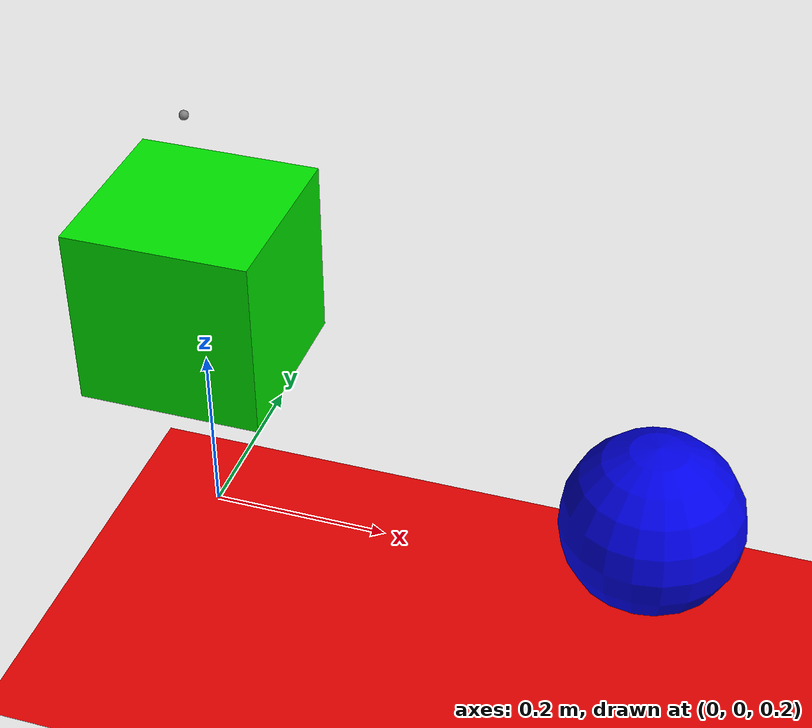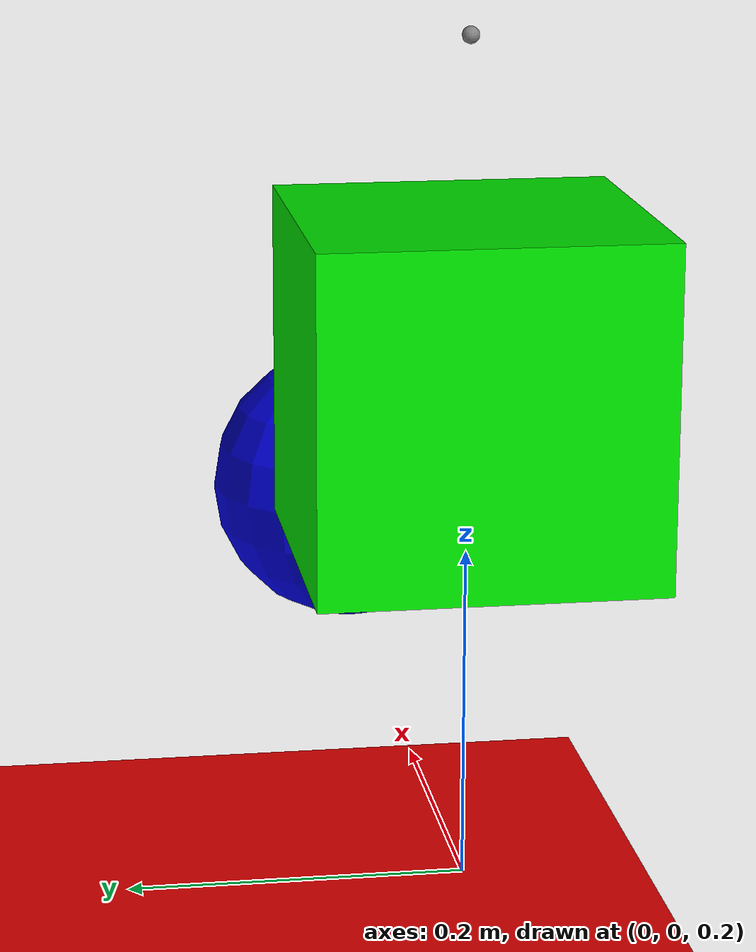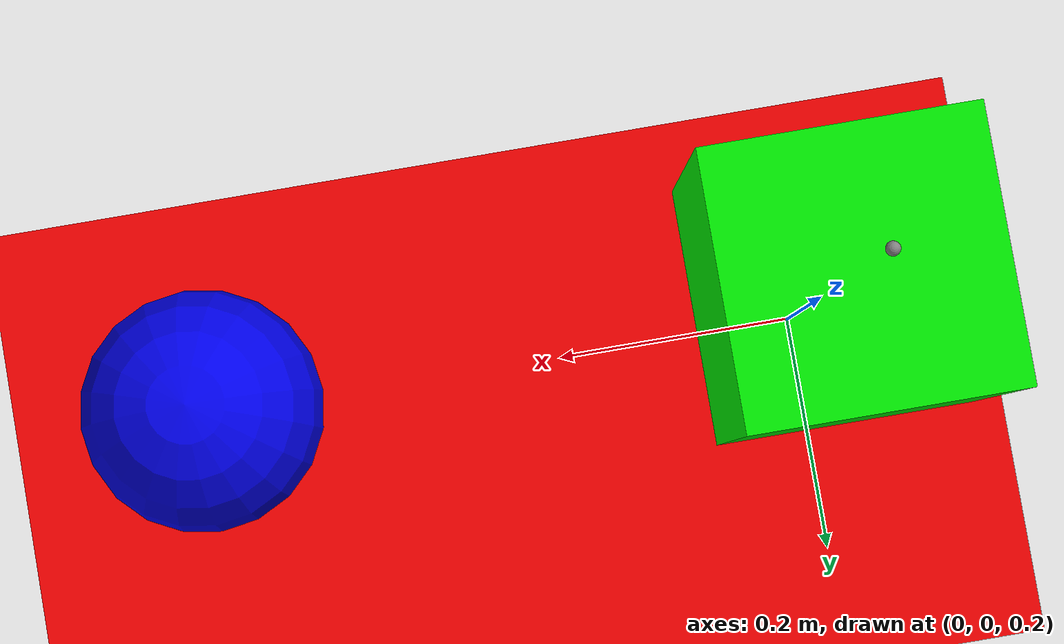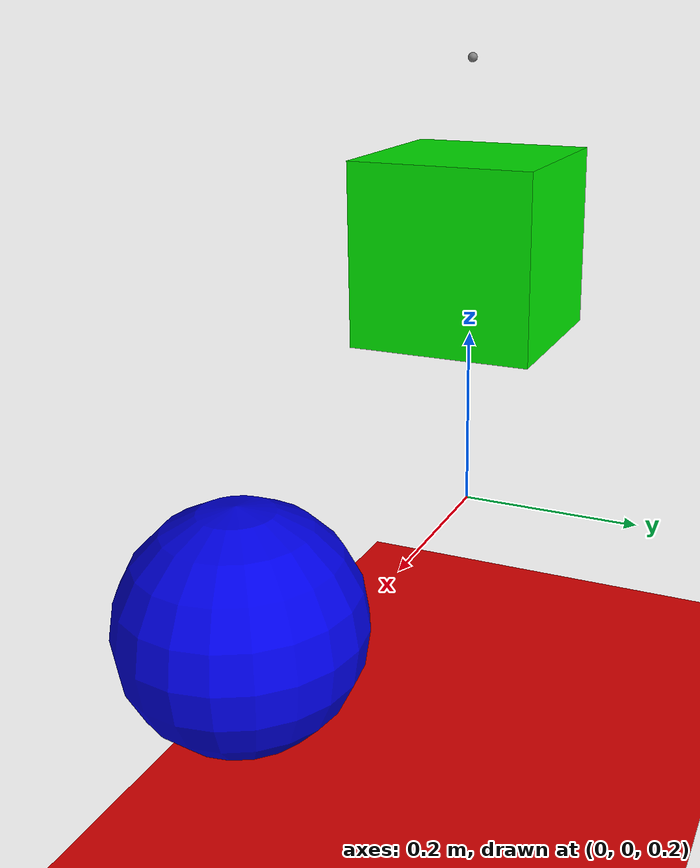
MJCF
<mujoco model="depth_capture_test">
  <extension>
    <plugin plugin="mujoco.sensor.depth_capture"/>
  </extension>

  <worldbody>
    <light diffuse=".5 .5 .5" pos="0 0 3" dir="0 0 -1"/>
    <geom type="plane" size="1 1 0.1" rgba=".9 0 0 1"/>

    <body pos="0 0 0.5">
      <geom type="box" size="0.1 0.1 0.1" rgba="0 .9 0 1"/>
      <site name="depth_sensor" pos="0 0 0.2" euler="0 0 0"/>
    </body>

    <body pos="0.5 0 0.3">
      <geom type="sphere" size="0.1" rgba="0 0 .9 1"/>
    </body>
  </worldbody>

  <sensor>
    <plugin name="depth_cam" plugin="mujoco.sensor.depth_capture" objtype="site" objname="depth_sensor">
      <config key="ncol" value="10"/>
      <config key="nrow" value="10"/>
      <config key="fov_x" value="45"/>
      <config key="fov_y" value="45"/>
      <config key="max_distance" value="5.0"/>
    </plugin>
  </sensor>
</mujoco>
